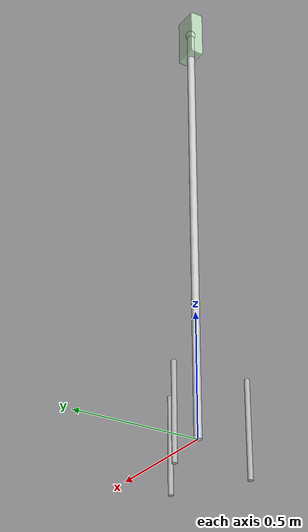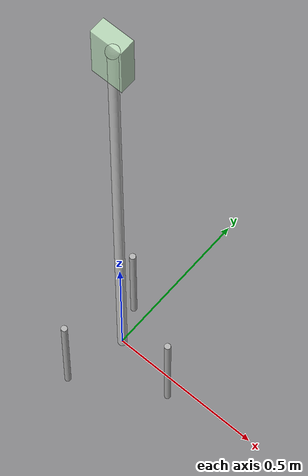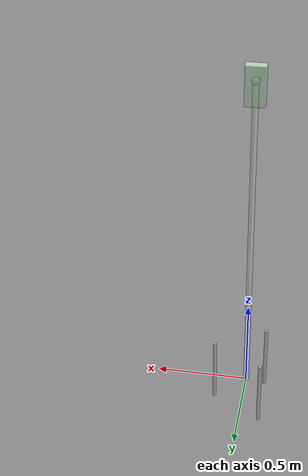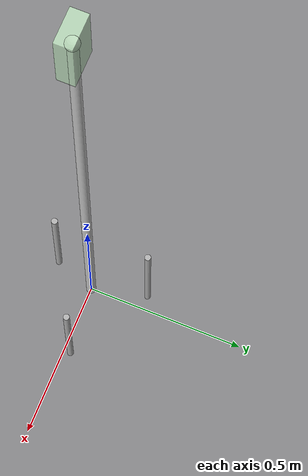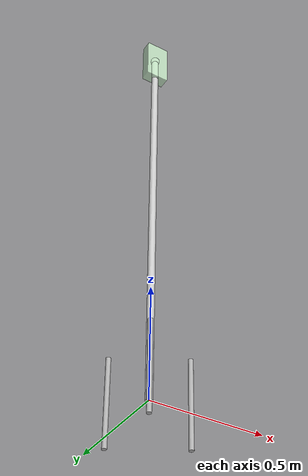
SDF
<?xml version="1.0"?>
<sdf version="1.6">
  <model name="iv_stand">
    <static>true</static>
    <link name="pole">
      <pose>0 0 0.9 0 0 0</pose>
      <collision name="c"><geometry><cylinder><radius>0.015</radius><length>1.8</length></cylinder></geometry></collision>
      <visual name="v">
        <geometry><cylinder><radius>0.015</radius><length>1.8</length></cylinder></geometry>
        <material><ambient>0.8 0.8 0.8 1</ambient><diffuse>0.8 0.8 0.8 1</diffuse>
          <specular>0.9 0.9 0.9 1</specular></material>
      </visual>
    </link>
    <!-- Tripod base arms -->
    <link name="base1"><pose>0.18 0 0.04 0 0 0</pose>
      <visual name="v"><geometry><cylinder><radius>0.01</radius><length>0.38</length></cylinder></geometry>
        <material><ambient>0.7 0.7 0.7 1</ambient><diffuse>0.7 0.7 0.7 1</diffuse></material></visual>
      <collision name="c"><geometry><cylinder><radius>0.01</radius><length>0.38</length></cylinder></geometry></collision>
    </link>
    <link name="base2"><pose>-0.09 0.155 0.04 0 0 0</pose>
      <visual name="v"><geometry><cylinder><radius>0.01</radius><length>0.38</length></cylinder></geometry>
        <material><ambient>0.7 0.7 0.7 1</ambient><diffuse>0.7 0.7 0.7 1</diffuse></material></visual>
      <collision name="c"><geometry><cylinder><radius>0.01</radius><length>0.38</length></cylinder></geometry></collision>
    </link>
    <link name="base3"><pose>-0.09 -0.155 0.04 0 0 0</pose>
      <visual name="v"><geometry><cylinder><radius>0.01</radius><length>0.38</length></cylinder></geometry>
        <material><ambient>0.7 0.7 0.7 1</ambient><diffuse>0.7 0.7 0.7 1</diffuse></material></visual>
      <collision name="c"><geometry><cylinder><radius>0.01</radius><length>0.38</length></cylinder></geometry></collision>
    </link>
    <!-- IV Bag -->
    <link name="bag">
      <pose>0 0 1.78 0 0 0</pose>
      <collision name="c"><geometry><box><size>0.1 0.05 0.2</size></box></geometry></collision>
      <visual name="v">
        <geometry><box><size>0.1 0.05 0.2</size></box></geometry>
        <material><ambient>0.8 0.95 0.8 0.8</ambient><diffuse>0.8 0.95 0.8 0.8</diffuse></material>
      </visual>
    </link>
    <!-- Hook -->
    <link name="hook">
      <pose>0 0 1.8 0 0 0</pose>
      <visual name="v"><geometry><sphere><radius>0.02</radius></sphere></geometry></visual>
    </link>
  </model>
</sdf>
